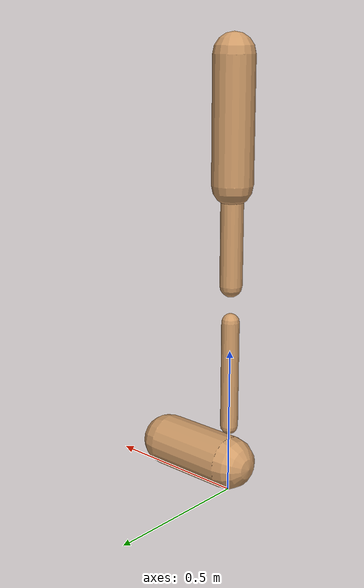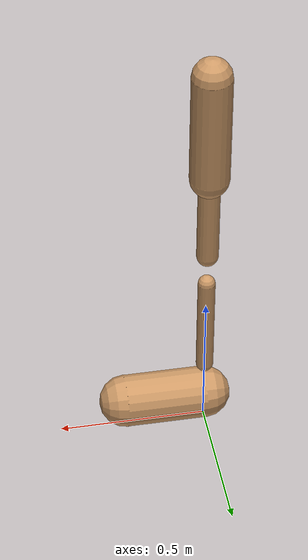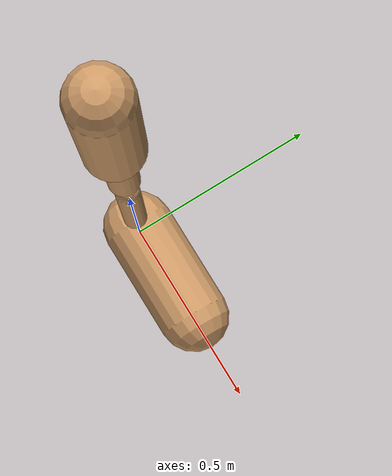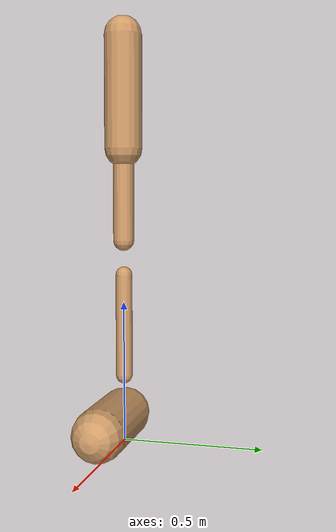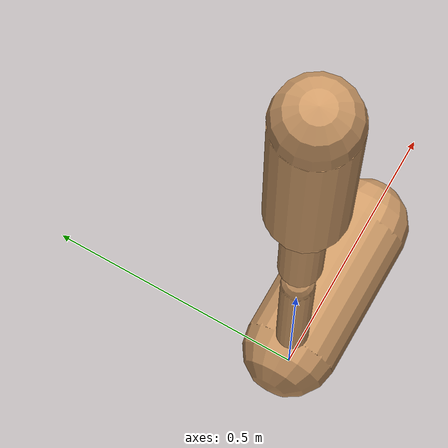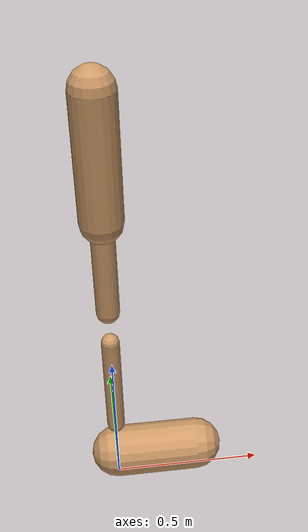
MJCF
<mujoco model="walker2d">
  <compiler angle="degree" coordinate="global" inertiafromgeom="true" />
  <default>
    <joint armature="0.01" damping=".1" limited="true" />
    <geom conaffinity="0" condim="3" contype="1" density="1000" friction="0.8 .1 .1" rgba="0.8 0.6 .4 1" />
  </default>
  <option integrator="RK4" timestep="0.002" />
  <worldbody>

    <body name="torso" pos="0 0 -0.26004058378766276">
      <joint armature="0" axis="1 0 0" damping="0" limited="false" name="ignorex" pos="0 0 0" stiffness="0" type="slide" />
      <joint armature="0" axis="0 0 1" damping="0" limited="false" name="ignorez" pos="0 0 0" ref="1.25" stiffness="0" type="slide" />
      <joint armature="0" axis="0 1 0" damping="0" limited="false" name="ignorey" pos="0 0 0" stiffness="0" type="hinge" />
      <geom fromto="0 0 1.45 0 0 1.05" name="torso_geom" size="0.06688634163022107" type="capsule" />
      <body name="thigh">
        <joint axis="0 -1 0" name="thigh_joint" pos="0 0 1.05" range="-150 0" type="hinge" />
        <geom fromto="0.0 0.0 1.05 0.0 0.0 0.7231771186362613" name="thigh_geom" size="0.03704840494754761" type="capsule" />
        <body name="leg" pos="0.0 0.0 0.12317711863626135">
          <joint axis="0 -1 0" name="leg_joint" pos="0 0 0.6" range="-150 0" type="hinge" />
          <geom fromto="0.0 0.0 0.6 0.0 0.0 0.23686346515140144" name="leg_geom" size="0.02963872395803809" type="capsule" />
          <body name="foot" pos="0.0 0.0 0.13686346515140144">
            <joint axis="0 -1 0" name="foot_joint" pos="0 0 0.1" range="-45 45" type="hinge" />
            <geom fromto="-0.0 0.0 0.09999999999999999 0.27539910095291154 0.0 0.09999999999999999" name="foot_geom" size="0.08988814694235416" type="capsule" />
          </body>
        </body>
      </body>

      <body name="thigh_left">
        <joint axis="0 -1 0" name="thigh_left_joint" pos="0 0 1.05" range="-150 0" type="hinge" />
        <geom fromto="0.0 0.0 1.05 0.0 0.0 0.7231771186362613" name="thigh_left_geom" rgba=".7 .3 .6 1" size="0.03704840494754761" type="capsule" />
        <body name="leg_left" pos="0.0 0.0 0.12317711863626135">
          <joint axis="0 -1 0" name="leg_left_joint" pos="0 0 0.6" range="-150 0" type="hinge" />
          <geom fromto="0.0 0.0 0.6 0.0 0.0 0.23686346515140144" name="leg_left_geom" rgba=".7 .3 .6 1" size="0.02963872395803809" type="capsule" />
          <body name="foot_left" pos="0.0 0.0 0.13686346515140144">
            <joint axis="0 -1 0" name="foot_left_joint" pos="0 0 0.1" range="-45 45" type="hinge" />
            <geom fromto="-0.0 0.0 0.09999999999999999 0.27539910095291154 0.0 0.09999999999999999" name="foot_left_geom" rgba=".7 .3 .6 1" size="0.08988814694235416" type="capsule" />
          </body>
        </body>
      </body>
    </body>
  </worldbody>
  <actuator>

    <motor ctrllimited="true" ctrlrange="-1.0 1.0" gear="100" joint="thigh_joint" />
    <motor ctrllimited="true" ctrlrange="-1.0 1.0" gear="100" joint="leg_joint" />
    <motor ctrllimited="true" ctrlrange="-1.0 1.0" gear="100" joint="foot_joint" />
    <motor ctrllimited="true" ctrlrange="-1.0 1.0" gear="100" joint="thigh_left_joint" />
    <motor ctrllimited="true" ctrlrange="-1.0 1.0" gear="100" joint="leg_left_joint" />
    <motor ctrllimited="true" ctrlrange="-1.0 1.0" gear="100" joint="foot_left_joint" />

  </actuator>
</mujoco>
